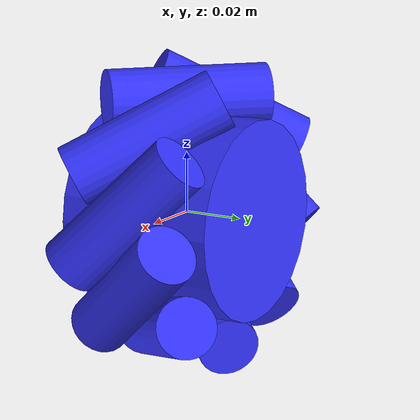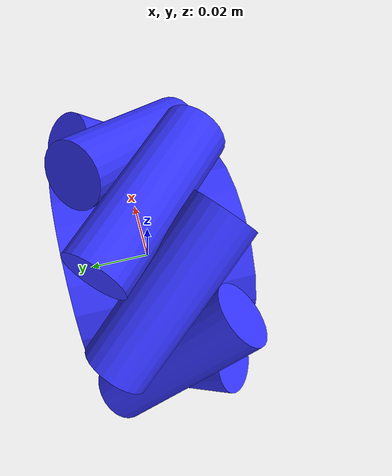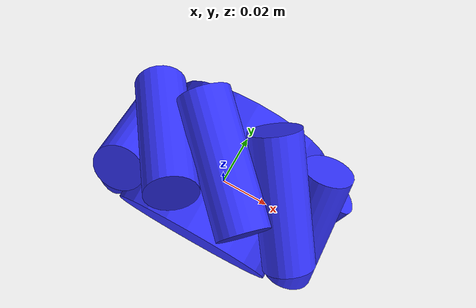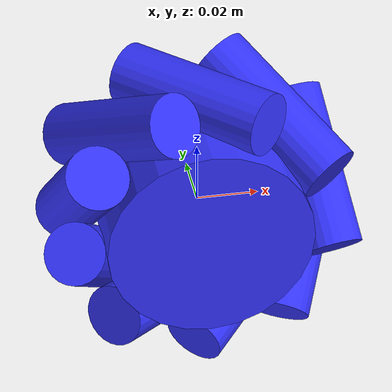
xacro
<?xml version="1.0"?>
<robot name="heale" xmlns:xacro="http://www.ros.org/wiki/xacro">

    <!-- Include wheel 1 *********************************************************************** -->
    <xacro:include filename="wheel_1.xacro"/>

    <!-- Include roller *********************************************************************** -->
    <xacro:include filename="roller.xacro"/>

    <!--back-right wheel**************************************************************************************************** -->
    <xacro:wheel_1 fl_or_br="back_right" />

    <!--back-right roller 1**************************************************************************************************** -->
    <xacro:roller frnt_or_bk="back" lft_or_rght="right" number="1" x="0" z="0.03833567" r="0" p="0.785398" y="0" />

    <!--back-right roller 2**************************************************************************************************** -->
    <xacro:roller frnt_or_bk="back" lft_or_rght="right" number="2"  x="0.02464169" z="0.02936683" r="-0.0872664" p="0.785398" y="0.698132" />

    <!--back-right roller 3**************************************************************************************************** -->
    <xacro:roller frnt_or_bk="back" lft_or_rght="right" number="3"  x="0.03775327" z="0.00665692" r="-0.1745328" p="0.785398" y="1.396263" />

    <!--back-right roller 4**************************************************************************************************** -->
    <xacro:roller frnt_or_bk="back" lft_or_rght="right" number="4"  x="0.03319966" z="-0.01916784" r="-0.26171799" p="0.785398" y="2.094395" />

    <!--back-right roller 5**************************************************************************************************** -->
    <xacro:roller frnt_or_bk="back" lft_or_rght="right" number="5"  x="0.01311157" z="-0.03602375" r="-0.26171799" p="0.785398" y="2.792527" />

    <!--back-right roller 6**************************************************************************************************** -->
    <xacro:roller frnt_or_bk="back" lft_or_rght="right" number="6"  x="-0.01311157" z="-0.03602375" r="-0.26171799" p="0.785398" y="3.490659" />

    <!--back-right roller 7**************************************************************************************************** -->
    <xacro:roller frnt_or_bk="back" lft_or_rght="right" number="7"  x="-0.03319966" z="-0.01916784" r="-0.26171799" p="0.785398" y="4.18879" />

    <!--back-right roller 8**************************************************************************************************** -->
    <xacro:roller frnt_or_bk="back" lft_or_rght="right" number="8"  x="-0.03775327" z="0.00665692" r="-0.1745328" p="0.785398" y="4.886922" />

    <!--back-right roller 9**************************************************************************************************** -->
    <xacro:roller frnt_or_bk="back" lft_or_rght="right" number="9"  x="-0.02464169" z="0.02936683" r="-0.0872664" p="0.785398" y="5.585054" />

</robot>

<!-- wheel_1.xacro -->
<robot name="heale" xmlns:xacro="http://www.ros.org/wiki/xacro">

<!-- Wheels macro ******************************************************************************************-->
    <xacro:macro name="wheel_1" params="fl_or_br">
        <!-- Wheel link -->
        <link name="${fl_or_br}_wheel">
            <inertial>
                <origin xyz="0.0 0.0 0.0" rpy="0.0 0.0 0.0" />
                <mass value="0.1" />
                <inertia ixx="0.01" ixy="0.0" ixz="0.0" iyy="0.01" iyz="0.0" izz="0.01" />
            </inertial>
            <visual name="">
                <origin xyz="0.0 0.0 0.0" rpy="1.57079632679 0.0 0.0" />
                <geometry>
                    <cylinder radius="0.033253505" length="0.05332" />
                </geometry>
                <material name="blue">
                    <color rgba="0.2 0.2 1 1"/>
                </material>
            </visual>
            <collision>
                <origin xyz="0.0 0.0 0.0" rpy="1.57079632679 0.0 0.0" />
                <geometry>
                    <cylinder radius="0.033253505" length="0.05332" />
                </geometry>
            </collision>
        </link>

    </xacro:macro>

</robot>

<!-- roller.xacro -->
<robot name="heale" xmlns:xacro="http://www.ros.org/wiki/xacro">

  <!-- Rubber Wheel Macro -->
  <xacro:macro name="roller" params="frnt_or_bk lft_or_rght number x z r p y">

    <!-- Rubber Wheel link -->
    <link name="{frnt_or_bk}_${lft_or_rght}_${number}_roller">
      <inertial>
        <origin xyz="-9.3675E-17 -1.0686E-15 1.3045E-15" rpy="0 0 0" />
        <mass value="0.0052688" />
        <inertia
          ixx="7.0476E-07" ixy="-5.6311E-09" ixz="5.6325E-09"
          iyy="4.4776E-07" iyz="2.5718E-07" izz="4.4764E-07" />
      </inertial>

      <visual>
        <origin xyz="0.0 0.0 0.0" rpy="1.57079632679 0 0" />
        <geometry>
            <cylinder radius="0.01016433" length="0.05332" />
        </geometry>
        <material name="blue">
          <color rgba="0.2 0.2 1 1"/>
        </material>
      </visual>

      <collision>
        <origin xyz="0.0 0.0 0.0" rpy="1.57079632679 0 0" />
        <geometry>
            <sphere radius="0.01016433"/>
        </geometry>
      </collision>
    </link>

    <link name="{frnt_or_bk}_${lft_or_rght}_${number}_dummy_roller">
    </link>

    <joint name="${frnt_or_bk}_${lft_or_rght}_${number}_dummy_roller_joint" type="fixed">
      <origin rpy="0 ${y} 0" xyz="${x} 0 ${z}" />
      <parent link="${frnt_or_bk}_${lft_or_rght}_wheel"/>
      <child link="{frnt_or_bk}_${lft_or_rght}_${number}_dummy_roller"/>
    </joint>

    <!-- Joint -->
    <joint name="${frnt_or_bk}_${lft_or_rght}_${number}_roller_joint" type="continuous">
      <origin rpy="0 0 ${p}" xyz="0 0 0" />
      <parent link="{frnt_or_bk}_${lft_or_rght}_${number}_dummy_roller"/>
      <child link="{frnt_or_bk}_${lft_or_rght}_${number}_roller"/>
      <axis xyz="0 1 0" />
    </joint>

    <!-- Gazebo plugin params -->
    <gazebo reference="{frnt_or_bk}_${lft_or_rght}_${number}_roller">
      <mu1>1e14</mu1>
      <mu2>1e14</mu2>
      <kp>1e12</kp>
      <kd>10.0</kd>
      <minDepth>0.001</minDepth>
      <maxVel>0.1</maxVel>
      <fdir1>0 1 0</fdir1>
    </gazebo>

  </xacro:macro>

</robot>
